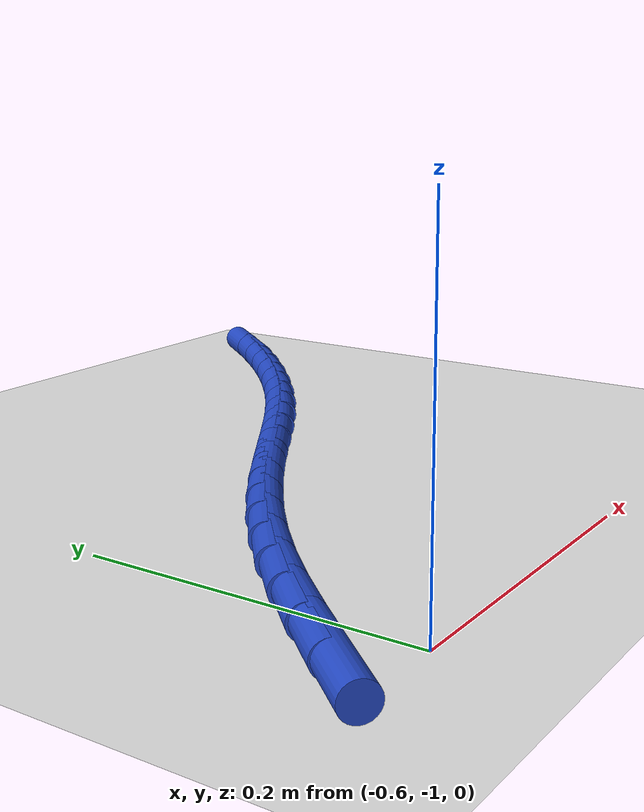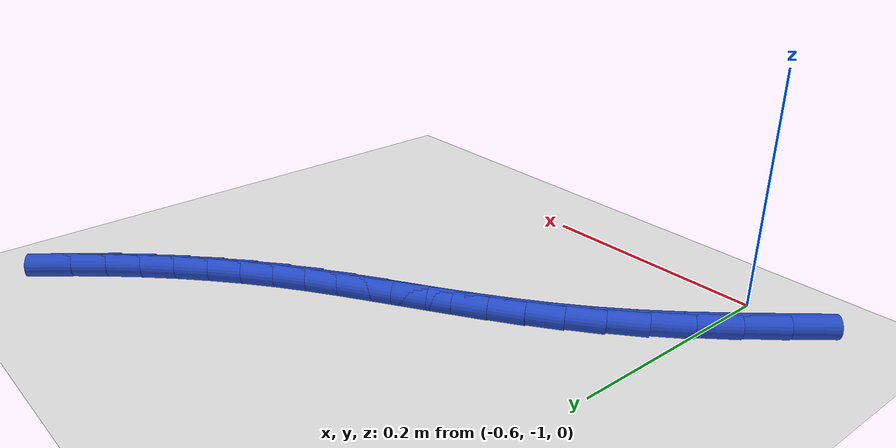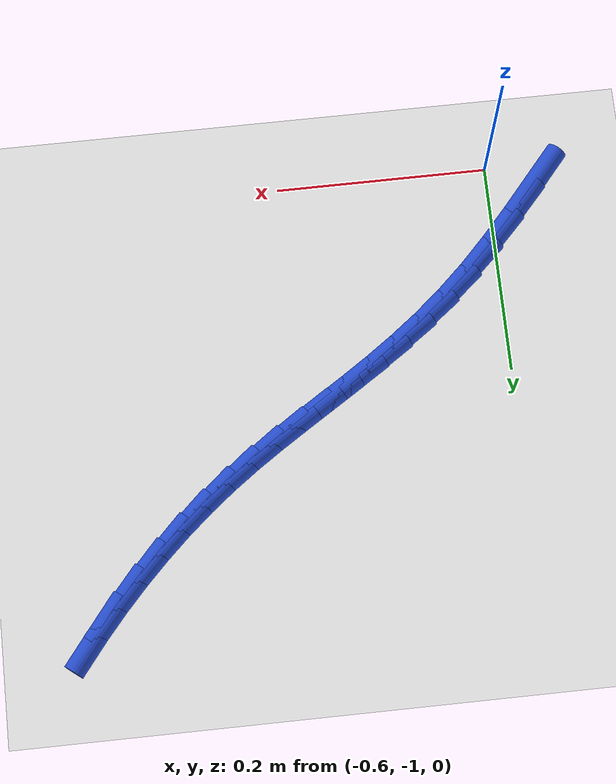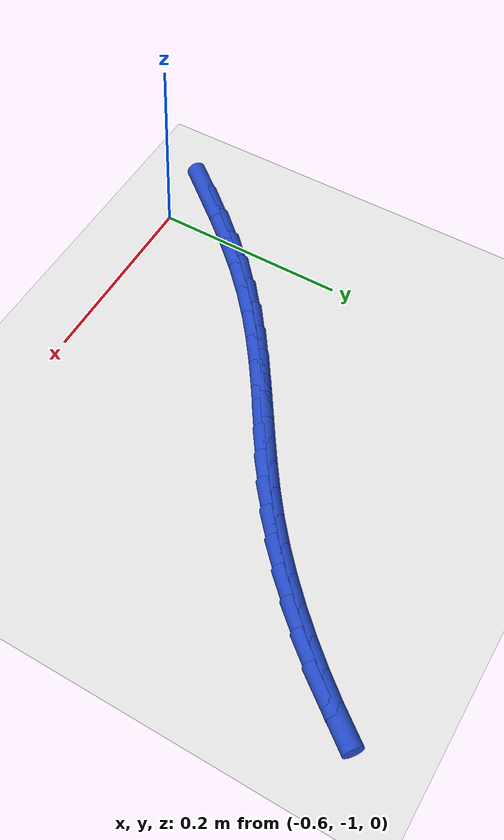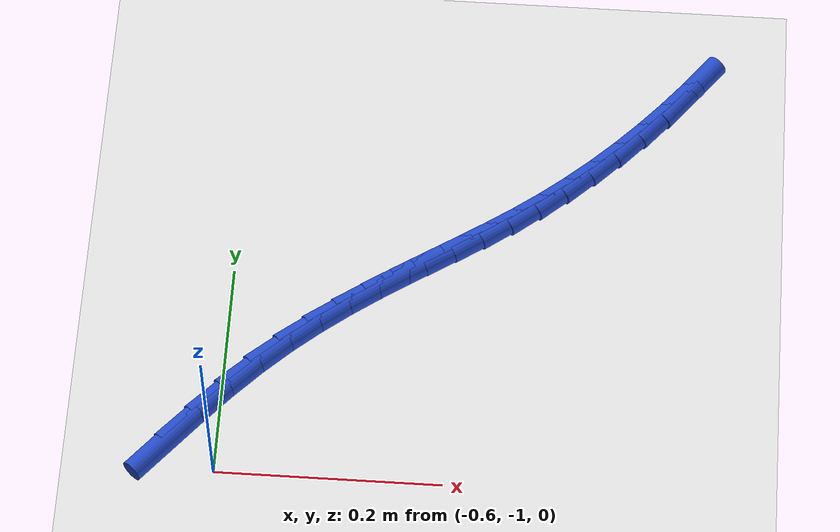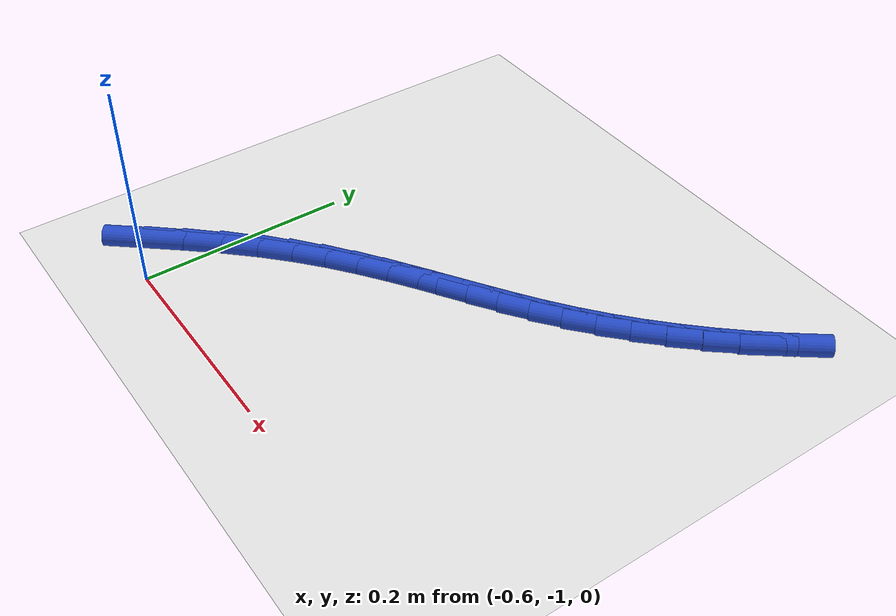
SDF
<sdf version="1.6">
 <world name="default">
  <model name="ground_plane">
   <static>1</static>
   <link name="link">
    <collision name="collision">
     <geometry><plane><normal>0 0 1</normal><size>100 100</size></plane></geometry>
     <surface><friction><ode><mu>100</mu><mu2>50</mu2></ode></friction></surface>
    </collision>
    <visual name="visual">
     <cast_shadows>0</cast_shadows>
     <geometry><plane><normal>0 0 1</normal><size>100 100</size></plane></geometry>
     <material>
      <script><uri>file://media/materials/scripts/gazebo.material</uri><name>Gazebo/WhiteGlow</name></script>
     </material>
    </visual>
   </link>
  </model>
  <model name="line">
   <link name="link_200">
    <pose>-0.6440899550072774 -0.9782830945409551 0.01 0 1.57 0.8669607171258464</pose>
    <collision name="collision">
     <geometry><cylinder><radius>0.01</radius><length>0.08</length></cylinder></geometry>
    </collision>
    <visual name="visual">
     <material>
      <script><name>Gazebo/Blue</name><uri>file://media/materials/scripts/gazebo.material</uri></script>
     </material>
     <geometry><cylinder><radius>0.01</radius><length>0.08</length></cylinder></geometry>
    </visual>
   </link>
   <link name="link_201">
    <pose>-0.6197912047759424 -0.9496581555553829 0.01 0 1.57 0.841601369212785</pose>
    <collision name="collision">
     <geometry><cylinder><radius>0.01</radius><length>0.08</length></cylinder></geometry>
    </collision>
    <visual name="visual">
     <material>
      <script><name>Gazebo/Blue</name><uri>file://media/materials/scripts/gazebo.material</uri></script>
     </material>
     <geometry><cylinder><radius>0.01</radius><length>0.08</length></cylinder></geometry>
    </visual>
   </link>
   <link name="link_202">
    <pose>-0.5953662102349232 -0.9223208889214405 0.01 0 1.57 0.8047357425641664</pose>
    <collision name="collision">
     <geometry><cylinder><radius>0.01</radius><length>0.08</length></cylinder></geometry>
    </collision>
    <visual name="visual">
     <material>
      <script><name>Gazebo/Blue</name><uri>file://media/materials/scripts/gazebo.material</uri></script>
     </material>
     <geometry><cylinder><radius>0.01</radius><length>0.08</length></cylinder></geometry>
    </visual>
   </link>
   <link name="link_203">
    <pose>-0.5708069811366812 -0.8967929749825001 0.01 0 1.57 0.7549781053082051</pose>
    <collision name="collision">
     <geometry><cylinder><radius>0.01</radius><length>0.08</length></cylinder></geometry>
    </collision>
    <visual name="visual">
     <material>
      <script><name>Gazebo/Blue</name><uri>file://media/materials/scripts/gazebo.material</uri></script>
     </material>
     <geometry><cylinder><radius>0.01</radius><length>0.08</length></cylinder></geometry>
    </visual>
   </link>
   <link name="link_204">
    <pose>-0.5461088257061105 -0.8735535340021954 0.01 0 1.57 0.7024055270172576</pose>
    <collision name="collision">
     <geometry><cylinder><radius>0.01</radius><length>0.08</length></cylinder></geometry>
    </collision>
    <visual name="visual">
     <material>
      <script><name>Gazebo/Blue</name><uri>file://media/materials/scripts/gazebo.material</uri></script>
     </material>
     <geometry><cylinder><radius>0.01</radius><length>0.08</length></cylinder></geometry>
    </visual>
   </link>
   <link name="link_205">
    <pose>-0.5213073776052102 -0.8525613684747885 0.01 0 1.57 0.6563276308264481</pose>
    <collision name="collision">
     <geometry><cylinder><radius>0.01</radius><length>0.08</length></cylinder></geometry>
    </collision>
    <visual name="visual">
     <material>
      <script><name>Gazebo/Blue</name><uri>file://media/materials/scripts/gazebo.material</uri></script>
     </material>
     <geometry><cylinder><radius>0.01</radius><length>0.08</length></cylinder></geometry>
    </visual>
   </link>
   <link name="link_206">
    <pose>-0.4964652593866035 -0.8334270441393727 0.01 0 1.57 0.6187532350618428</pose>
    <collision name="collision">
     <geometry><cylinder><radius>0.01</radius><length>0.08</length></cylinder></geometry>
    </collision>
    <visual name="visual">
     <material>
      <script><name>Gazebo/Blue</name><uri>file://media/materials/scripts/gazebo.material</uri></script>
     </material>
     <geometry><cylinder><radius>0.01</radius><length>0.08</length></cylinder></geometry>
    </visual>
   </link>
   <link name="link_207">
    <pose>-0.4716455891984774 -0.8157547320820335 0.01 0 1.57 0.5912626531103415</pose>
    <collision name="collision">
     <geometry><cylinder><radius>0.01</radius><length>0.08</length></cylinder></geometry>
    </collision>
    <visual name="visual">
     <material>
      <script><name>Gazebo/Blue</name><uri>file://media/materials/scripts/gazebo.material</uri></script>
     </material>
     <geometry><cylinder><radius>0.01</radius><length>0.08</length></cylinder></geometry>
    </visual>
   </link>
   <link name="link_208">
    <pose>-0.4469114851890176 -0.7991486033888563 0.01 0 1.57 0.5750946303573117</pose>
    <collision name="collision">
     <geometry><cylinder><radius>0.01</radius><length>0.08</length></cylinder></geometry>
    </collision>
    <visual name="visual">
     <material>
      <script><name>Gazebo/Blue</name><uri>file://media/materials/scripts/gazebo.material</uri></script>
     </material>
     <geometry><cylinder><radius>0.01</radius><length>0.08</length></cylinder></geometry>
    </visual>
   </link>
   <link name="link_209">
    <pose>-0.4223260655064119 -0.783212829145927 0.01 0 1.57 0.5711195683388031</pose>
    <collision name="collision">
     <geometry><cylinder><radius>0.01</radius><length>0.08</length></cylinder></geometry>
    </collision>
    <visual name="visual">
     <material>
      <script><name>Gazebo/Blue</name><uri>file://media/materials/scripts/gazebo.material</uri></script>
     </material>
     <geometry><cylinder><radius>0.01</radius><length>0.08</length></cylinder></geometry>
    </visual>
   </link>
   <link name="link_210">
    <pose>-0.39795244829884646 -0.7675515804393315 0.01 0 1.57 0.579821319225839</pose>
    <collision name="collision">
     <geometry><cylinder><radius>0.01</radius><length>0.08</length></cylinder></geometry>
    </collision>
    <visual name="visual">
     <material>
      <script><name>Gazebo/Blue</name><uri>file://media/materials/scripts/gazebo.material</uri></script>
     </material>
     <geometry><cylinder><radius>0.01</radius><length>0.08</length></cylinder></geometry>
    </visual>
   </link>
   <link name="link_211">
    <pose>-0.3738537517145075 -0.7517690283551545 0.01 0 1.57 0.6012644338318942</pose>
    <collision name="collision">
     <geometry><cylinder><radius>0.01</radius><length>0.08</length></cylinder></geometry>
    </collision>
    <visual name="visual">
     <material>
      <script><name>Gazebo/Blue</name><uri>file://media/materials/scripts/gazebo.material</uri></script>
     </material>
     <geometry><cylinder><radius>0.01</radius><length>0.08</length></cylinder></geometry>
    </visual>
   </link>
   <link name="link_212">
    <pose>-0.35009309390158183 -0.7354693439794819 0.01 0 1.57 0.6350327597266361</pose>
    <collision name="collision">
     <geometry><cylinder><radius>0.01</radius><length>0.08</length></cylinder></geometry>
    </collision>
    <visual name="visual">
     <material>
      <script><name>Gazebo/Blue</name><uri>file://media/materials/scripts/gazebo.material</uri></script>
     </material>
     <geometry><cylinder><radius>0.01</radius><length>0.08</length></cylinder></geometry>
    </visual>
   </link>
   <link name="link_213">
    <pose>-0.3267335922469522 -0.7182568624709508 0.01 0 1.57 0.6771705358914495</pose>
    <collision name="collision">
     <geometry><cylinder><radius>0.01</radius><length>0.08</length></cylinder></geometry>
    </collision>
    <visual name="visual">
     <material>
      <script><name>Gazebo/Blue</name><uri>file://media/materials/scripts/gazebo.material</uri></script>
     </material>
     <geometry><cylinder><radius>0.01</radius><length>0.08</length></cylinder></geometry>
    </visual>
   </link>
   <link name="link_214">
    <pose>-0.3038378401142193 -0.6998488540258999 0.01 0 1.57 0.718879708068031</pose>
    <collision name="collision">
     <geometry><cylinder><radius>0.01</radius><length>0.08</length></cylinder></geometry>
    </collision>
    <visual name="visual">
     <material>
      <script><name>Gazebo/Blue</name><uri>file://media/materials/scripts/gazebo.material</uri></script>
     </material>
     <geometry><cylinder><radius>0.01</radius><length>0.08</length></cylinder></geometry>
    </visual>
   </link>
   <link name="link_215">
    <pose>-0.28146699333216474 -0.6802723995958183 0.01 0 1.57 0.759023603099352</pose>
    <collision name="collision">
     <geometry><cylinder><radius>0.01</radius><length>0.08</length></cylinder></geometry>
    </collision>
    <visual name="visual">
     <material>
      <script><name>Gazebo/Blue</name><uri>file://media/materials/scripts/gazebo.material</uri></script>
     </material>
     <geometry><cylinder><radius>0.01</radius><length>0.08</length></cylinder></geometry>
    </visual>
   </link>
   <link name="link_216">
    <pose>-0.25968196341074684 -0.6596072345783732 0.01 0 1.57 0.7979134663651647</pose>
    <collision name="collision">
     <geometry><cylinder><radius>0.01</radius><length>0.08</length></cylinder></geometry>
    </collision>
    <visual name="visual">
     <material>
      <script><name>Gazebo/Blue</name><uri>file://media/materials/scripts/gazebo.material</uri></script>
     </material>
     <geometry><cylinder><radius>0.01</radius><length>0.08</length></cylinder></geometry>
    </visual>
   </link>
   <link name="link_217">
    <pose>-0.2385436618599222 -0.6379330943712299 0.01 0 1.57 0.8358436926248272</pose>
    <collision name="collision">
     <geometry><cylinder><radius>0.01</radius><length>0.08</length></cylinder></geometry>
    </collision>
    <visual name="visual">
     <material>
      <script><name>Gazebo/Blue</name><uri>file://media/materials/scripts/gazebo.material</uri></script>
     </material>
     <geometry><cylinder><radius>0.01</radius><length>0.08</length></cylinder></geometry>
    </visual>
   </link>
   <link name="link_218">
    <pose>-0.218113000189648 -0.6153297143720545 0.01 0 1.57 0.8730950585649406</pose>
    <collision name="collision">
     <geometry><cylinder><radius>0.01</radius><length>0.08</length></cylinder></geometry>
    </collision>
    <visual name="visual">
     <material>
      <script><name>Gazebo/Blue</name><uri>file://media/materials/scripts/gazebo.material</uri></script>
     </material>
     <geometry><cylinder><radius>0.01</radius><length>0.08</length></cylinder></geometry>
    </visual>
   </link>
   <link name="link_219">
    <pose>-0.19845088990988122 -0.5918768299785127 0.01 0 1.57 0.909938238900074</pose>
    <collision name="collision">
     <geometry><cylinder><radius>0.01</radius><length>0.08</length></cylinder></geometry>
    </collision>
    <visual name="visual">
     <material>
      <script><name>Gazebo/Blue</name><uri>file://media/materials/scripts/gazebo.material</uri></script>
     </material>
     <geometry><cylinder><radius>0.01</radius><length>0.08</length></cylinder></geometry>
    </visual>
   </link>
  </model>
 </world>
</sdf>
